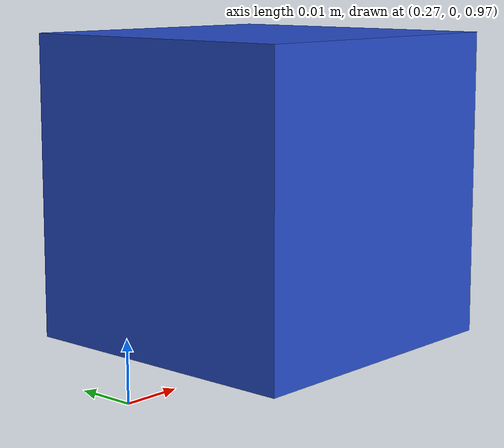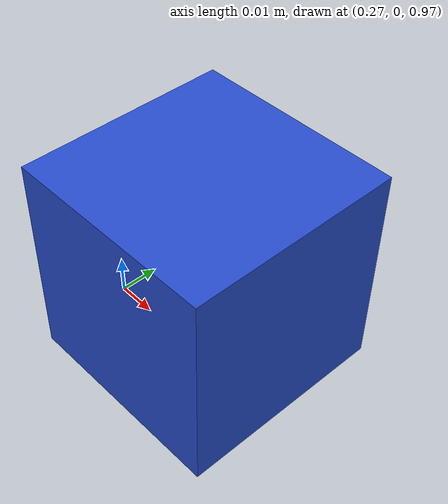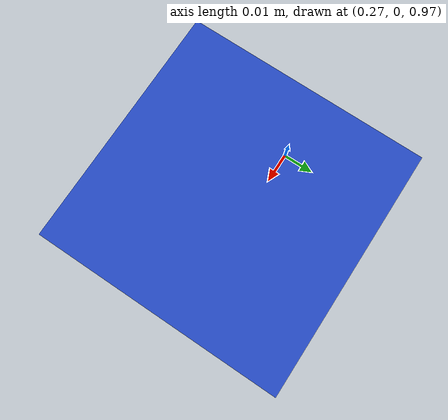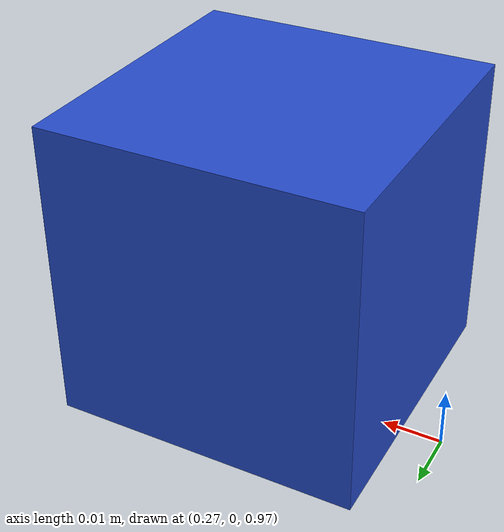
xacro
<?xml version="1.0"?>
<robot name="environment" xmlns:xacro="http://ros.org/wiki/xacro">

  <link name="world"/>

  <link name="camera_link">
    <inertial>
      <mass value="0.1" />
      <inertia ixx="0.0001" ixy="0.0" ixz="0.0" iyy="0.0001" iyz="0.0" izz="0.0001" />
    </inertial>
    <visual>
      <geometry>
        <box size="0.05 0.05 0.05"/>
      </geometry>
    </visual>
    <collision>
      <geometry>
        <box size="0.05 0.05 0.05"/>
      </geometry>
    </collision>
  </link>

  <joint name="camera_joint" type="fixed">
    <parent link="world"/>
    <child link="camera_link"/>
    <origin xyz="0.3 0.0 1.0" rpy="0 1.5708 0"/>
  </joint>

  <gazebo reference="camera_link">
    <material>Gazebo/Blue</material> <sensor type="camera" name="top_camera">
      <update_rate>30.0</update_rate>
      <camera name="head">
        <horizontal_fov>1.047</horizontal_fov>
        <image>
          <width>800</width>
          <height>800</height>
          <format>R8G8B8</format>
        </image>
        <clip>
          <near>0.02</near>
          <far>300</far>
        </clip>
      </camera>
      <plugin name="camera_controller" filename="libgazebo_ros_camera.so">
        <alwaysOn>true</alwaysOn>
        <updateRate>0.0</updateRate>
        <cameraName>top_camera</cameraName>
        <imageTopicName>image_raw</imageTopicName>
        <cameraInfoTopicName>camera_info</cameraInfoTopicName>
        <frameName>camera_link</frameName>
      </plugin>
    </sensor>
  </gazebo>
</robot>
